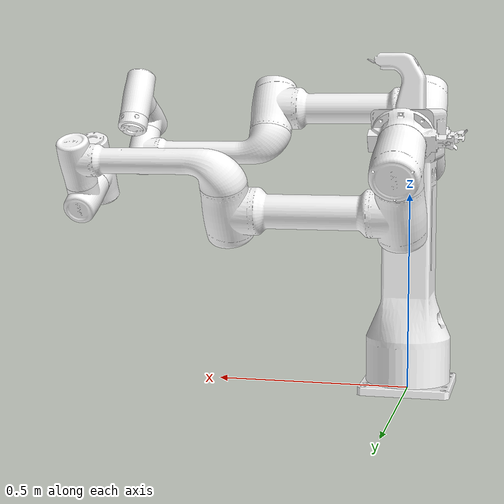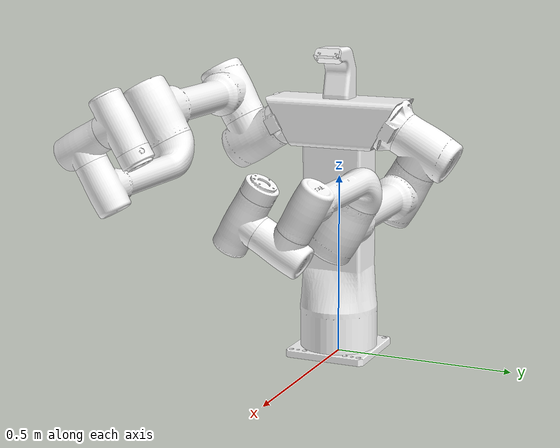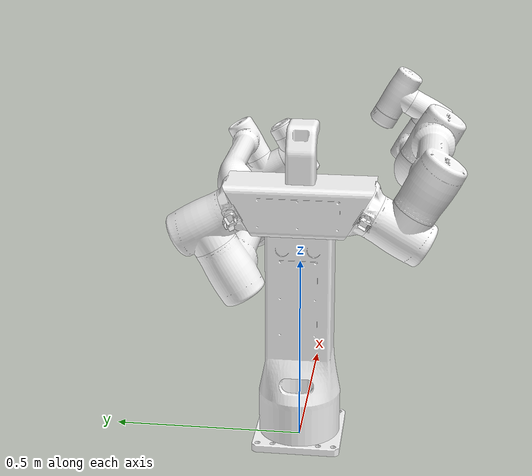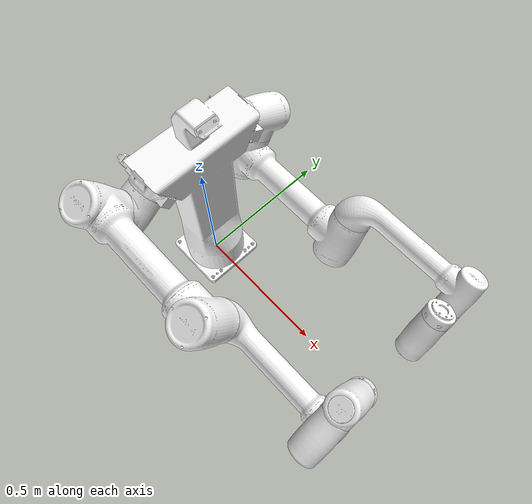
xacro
<?xml version="1.0" encoding="utf-8"?>

<robot name="dual_jaka_zu5" xmlns:xacro="http://wiki.ros.org/xacro">

  <xacro:include filename="$(find jaka_description)/urdf/jaka_zu5/dual_arm_body.xacro" />
  <xacro:include filename="$(find jaka_description)/urdf/jaka_zu5/l_arm_body.xacro" />
  <xacro:include filename="$(find jaka_description)/urdf/jaka_zu5/r_arm_body.xacro" />

  <!-- Macro for inertia matrix -->
  <xacro:macro name="sphere_inertial_matrix" params="m r">
    <inertial>
      <mass value="${m}" />
        <inertia ixx="${2*m*r*r/5}" ixy="0" ixz="0" iyy="${2*m*r*r/5}" iyz="0"  izz="${2*m*r*r/5}" />
    </inertial>
  </xacro:macro>

  <xacro:macro name="cylinder_inertial_matrix" params="m r h">
    <inertial>
      <mass value="${m}" />
        <inertia ixx="${m*(3*r*r+h*h)/12}" ixy = "0" ixz = "0" iyy="${m*(3*r*r+h*h)/12}" iyz = "0" izz="${m*r*r/2}" />
    </inertial>
  </xacro:macro>

  <xacro:macro name="box_inertial_matrix" params="m w h d">
    <inertial>
      <mass value="${m}" />
        <inertia ixx="${m*(h*h+d*d)/12}" ixy = "0" ixz = "0" iyy="${m*(w*w+d*d)/12}" iyz = "0" izz="${m*(w*w+h*h)/12}" />
    </inertial>
  </xacro:macro>

  <!-- DUAL ZU5 -->
  <link name="world" />

  <joint name="world_joint" type="fixed">
      <parent link="world" />
      <child link = "base_footprint" />
      <origin xyz="0 0 0" rpy="0 0 0" />
  </joint>

  <link name="base_footprint" >
    </link >

  <xacro:dual_arm_body body_prefix = "arm_body">
    <origin xyz="0 0 0" rpy="0 0 0" />
  </xacro:dual_arm_body>

  <xacro:l_arm_body parent_prefix = "arm_body_link">
    <origin xyz="0 0.149 0.65" rpy="-1.047 3.1415926 0" />
  </xacro:l_arm_body>

  <xacro:r_arm_body parent_prefix = "arm_body_link">
    <origin xyz="0 -0.149 0.65" rpy="1.047 3.1415926 0" />
  </xacro:r_arm_body>

</robot>

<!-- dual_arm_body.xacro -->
<robot xmlns:xacro="http://ros.org/wiki/xacro" name="dual_arm_body">
  <xacro:macro name="dual_arm_body" params="body_prefix *joint_pose">
    <link name="${body_prefix}_link">
        <inertial>
          <origin
            xyz="0.0023805 -8.69209997657022E-09 0.38265"
            rpy="0 0 0" />
          <mass
            value="26.908" />
          <inertia
            ixx="1.9969"
            ixy="5.78330000000082E-06"
            ixz="-0.013305"
            iyy="1.9121"
            iyz="-9.59990001016968E-08"
            izz="0.25121" />
        </inertial>
        <visual>
          <origin
            xyz="0 0 0"
            rpy="1.5707963267949 0 0" />
          <geometry>
            <mesh
              filename="package://jaka_description/meshes/dual_arm_body.STL" />
          </geometry>
          <material
            name="">
            <color rgba="1 1 1 1" />
          </material>
        </visual>
        <collision>
          <origin xyz="0 0 0" rpy="1.5707963267949 0 0" />
          <geometry>
            <mesh
              filename="package://jaka_description/meshes/dual_arm_body.STL" />
          </geometry>
        </collision>
    </link>

    <joint name="${body_prefix}_joint" type="fixed">
      <xacro:insert_block name="joint_pose"/>
      <parent link="base_footprint" />
      <child link = "${body_prefix}_link" />
    </joint>

    <gazebo reference="${body_prefix}_link">
      <material>Gazebo/Green</material>
      <turnGravityOff>false</turnGravityOff>
    </gazebo>

  </xacro:macro>
</robot>

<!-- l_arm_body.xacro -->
<robot xmlns:xacro="http://ros.org/wiki/xacro" name="l_arm_body">
  <xacro:macro name="l_arm_body" params="parent_prefix *joint_pose">

  <xacro:arg name="default_velocity" default="1" />

  <link name="l_arm_base_link">
    <inertial>
      <origin
        xyz="0.00096495 6.33210000011972E-08 0.019553"
        rpy="0 0 0" />
      <mass
        value="0.5146" />
      <inertia
        ixx="0.00062137"
        ixy="-1.25310000000002E-08"
        ixz="3.2162E-06"
        iyy="0.00086635"
        iyz="1.01950000029785E-10"
        izz="0.0013528" />
    </inertial>
    <visual>
      <origin
        xyz="0 0 0"
        rpy="1.5707963267949 0 0" />
      <geometry>
        <mesh
          filename="package://jaka_description/meshes/jaka_zu5_meshes/link_0.STL" />
      </geometry>
      <material
        name="">
        <color
          rgba="1 1 1 1" />
      </material>
    </visual>
    <collision>
      <origin
        xyz="0 0 0"
        rpy="1.5707963267949 0 0" />
      <geometry>
        <mesh
          filename="package://jaka_description/meshes/jaka_zu5_meshes/link_0.STL" />
      </geometry>
    </collision>
  </link>

  <joint name="l_arm_base_joint" type="fixed">
    <xacro:insert_block name="joint_pose"/>
    <parent link="${parent_prefix}" />
    <child link="l_arm_base_link" />
    <axis xyz="0 0 0" />
  </joint>

  <link name="l_shoulder_pan_link">
    <inertial>
      <origin
        xyz="5.1683E-07 -0.0033223 -0.001511"
        rpy="0 0 0" />
      <mass
        value="1.9282" />
      <inertia
        ixx="0.0056433"
        ixy="5.7032E-08"
        ixz="-6.2225E-08"
        iyy="0.0054898"
        iyz="2.0134999999999E-06"
        izz="0.0038887" />
    </inertial>
    <visual>
      <origin
        xyz="0 0 0"
        rpy="1.5707963267949 0 0" />
      <geometry>
        <mesh
          filename="package://jaka_description/meshes/jaka_zu5_meshes/link_1.STL" />
      </geometry>
      <material
        name="">
        <color
          rgba="1 1 1 1" />
      </material>
    </visual>
    <collision>
      <origin
        xyz="0 0 0"
        rpy="1.5707963267949 0 0" />
      <geometry>
        <mesh
          filename="package://jaka_description/meshes/jaka_zu5_meshes/link_1.STL" />
      </geometry>
    </collision>
  </link>

  <joint name="l_shoulder_pan_joint" type="continuous">
    <origin xyz="0 0 0.12015" rpy="0 0 0" />
    <parent link="l_arm_base_link" />
    <child link="l_shoulder_pan_link" />
    <axis xyz="0 0 1" />
    <limit lower="-3" upper="3" effort="49" velocity="$(arg default_velocity)" />
  </joint>

  <link name="l_shoulder_lift_link">
    <inertial>
      <origin
        xyz="-0.215 -2.05689999912349E-08 0.14315"
        rpy="0 0 0" />
      <mass
        value="5.8409" />
      <inertia
        ixx="0.013221"
        ixy="4.5164E-07"
        ixz="-4.5411E-08"
        iyy="0.20339"
        iyz="-3.02220000002149E-08"
        izz="0.19988" />
    </inertial>
    <visual>
      <origin
        xyz="0 0 0"
        rpy="1.5707963267949 0 0" />
      <geometry>
        <mesh
          filename="package://jaka_description/meshes/jaka_zu5_meshes/link_2.STL" />
      </geometry>
      <material
        name="">
        <color
          rgba="1 1 1 1" />
      </material>
    </visual>
    <collision>
      <origin
        xyz="0 0 0"
        rpy="1.5707963267949 0 0" />
      <geometry>
        <mesh
          filename="package://jaka_description/meshes/jaka_zu5_meshes/link_2.STL" />
      </geometry>
    </collision>
  </link>

  <joint name="l_shoulder_lift_joint" type="continuous">
    <origin xyz="0 0 0" rpy="1.57079 0 0" />
    <parent link="l_shoulder_pan_link" />
    <child link="l_shoulder_lift_link" />
    <axis xyz="0 0 -1" />
    <limit lower="-3" upper="3" effort="49" velocity="$(arg default_velocity)" />
  </joint>

  <link name="l_elbow_link">
    <inertial>
      <origin
        xyz="-0.19088 -3.84559999999352E-07 0.010588"
        rpy="0 0 0" />
      <mass
        value="2.3018" />
      <inertia
        ixx="0.0028116"
        ixy="2.56400000000176E-07"
        ixz="-0.0028806"
        iyy="0.053035"
        iyz="-6.48900000004372E-09"
        izz="0.052321" />
    </inertial>
    <visual>
      <origin
        xyz="0 0 0"
        rpy="1.5707963267949 0 0" />
      <geometry>
        <mesh
          filename="package://jaka_description/meshes/jaka_zu5_meshes/link_3.STL" />
      </geometry>
      <material
        name="">
        <color
          rgba="1 1 1 1" />
      </material>
    </visual>
    <collision>
      <origin
        xyz="0 0 0"
        rpy="1.5707963267949 0 0" />
      <geometry>
        <mesh
          filename="package://jaka_description/meshes/jaka_zu5_meshes/link_3.STL" />
      </geometry>
    </collision>
  </link>

  <joint name="l_elbow_joint" type="continuous">
    <origin xyz="-0.430 0 0" rpy="0 0 0" />
    <parent link="l_shoulder_lift_link" />
    <child link="l_elbow_link" />
    <axis xyz="0 0 -1" />
    <limit lower="-3" upper="3" effort="49" velocity="$(arg default_velocity)" />
  </joint>

  <link name="l_wrist_1_link">
    <inertial>
      <origin
        xyz="4.1023E-07 -0.0057996 -0.0026718"
        rpy="0 0 0" />
      <mass
        value="0.70739" />
      <inertia
        ixx="0.0011791"
        ixy="5.5084E-09"
        ixz="1.4807E-09"
        iyy="0.00066568"
        iyz="-1.0639E-05"
        izz="0.0011425" />
    </inertial>
    <visual>
      <origin
        xyz="0 0 0"
        rpy="1.5707963267949 0 0" />
      <geometry>
        <mesh
          filename="package://jaka_description/meshes/jaka_zu5_meshes/link_4.STL" />
      </geometry>
      <material
        name="">
        <color
          rgba="1 1 1 1" />
      </material>
    </visual>
    <collision>
      <origin
        xyz="0 0 0"
        rpy="1.5707963267949 0 0" />
      <geometry>
        <mesh
          filename="package://jaka_description/meshes/jaka_zu5_meshes/link_4.STL" />
      </geometry>
    </collision>
  </link>

  <joint name="l_wrist_1_joint" type="continuous">
    <origin xyz="-0.3685 0 0.114" rpy="0 0 0" />
    <parent link="l_elbow_link" />
    <child link="l_wrist_1_link" />
    <axis xyz="0 0 -1" />
    <limit lower="-3" upper="3" effort="11" velocity="$(arg default_velocity)" />
  </joint>

  <link name="l_wrist_2_link">
    <inertial>
      <origin
        xyz="-3.0743E-08 -0.0028896 -0.0023422"
        rpy="0 0 0" />
      <mass
        value="0.80693" />
      <inertia
        ixx="0.001655"
        ixy="1.0299E-08"
        ixz="-1.2235E-08"
        iyy="0.0007447"
        iyz="-5.79109999999995E-06"
        izz="0.0016178" />
    </inertial>
    <visual>
      <origin
        xyz="0 0 0"
        rpy="1.5707963267949 0 0" />
      <geometry>
        <mesh
          filename="package://jaka_description/meshes/jaka_zu5_meshes/link_5.STL" />
      </geometry>
      <material
        name="">
        <color
          rgba="1 1 1 1" />
      </material>
    </visual>
    <collision>
      <origin
        xyz="0 0 0"
        rpy="1.5707963267949 0 0" />
      <geometry>
        <mesh
          filename="package://jaka_description/meshes/jaka_zu5_meshes/link_5.STL" />
      </geometry>
    </collision>
  </link>

  <joint name="l_wrist_2_joint" type="continuous">
    <origin xyz="0 -0.1135 0" rpy="1.57079 3.1415926 0" />
    <parent link="l_wrist_1_link" />
    <child link="l_wrist_2_link" />
    <axis xyz="0 0 1" />
    <limit lower="-3" upper="3" effort="11" velocity="$(arg default_velocity)" />
  </joint>

  <link name="l_wrist_3_link">
    <inertial>
      <origin
        xyz="-2.7624E-05 1.34819999999987E-05 -0.021245"
        rpy="0 0 0" />
      <mass
        value="0.1805" />
      <inertia
        ixx="9.1533E-05"
        ixy="-8.8776E-08"
        ixz="8.1265E-08"
        iyy="9.2197E-05"
        iyz="1.05880000000003E-07"
        izz="0.00014442" />
    </inertial>
    <visual>
      <origin
        xyz="0 0 0"
        rpy="1.5707963267949 0 0" />
      <geometry>
        <mesh
          filename="package://jaka_description/meshes/jaka_zu5_meshes/link_6.STL" />
      </geometry>
      <material
        name="">
        <color
          rgba="1 1 1 1" />
      </material>
    </visual>
    <collision>
      <origin
        xyz="0 0 0"
        rpy="1.5707963267949 0 0" />
      <geometry>
        <mesh
          filename="package://jaka_description/meshes/jaka_zu5_meshes/link_6.STL" />
      </geometry>
    </collision>
  </link>

  <joint name="l_wrist_3_joint" type="continuous">
    <origin xyz="0 0.107 0" rpy="-1.57079 0 0" />
    <parent link="l_wrist_2_link" />
    <child link="l_wrist_3_link" />
    <axis xyz="0 0 1" />
    <limit lower="-3" upper="3" effort="11" velocity="$(arg default_velocity)" />
  </joint>

  <!-- Transmissions for ROS Control -->
  <xacro:macro name="transmission_block" params="joint_name">
    <transmission name="${joint_name}_trans">
      <type>transmission_interface/SimpleTransmission</type>
      <joint name="${joint_name}">
        <hardwareInterface>hardware_interface/PositionJointInterface</hardwareInterface>
      </joint>
      <actuator name="${joint_name}_motor">
        <hardwareInterface>hardware_interface/PositionJointInterface</hardwareInterface>
        <mechanicalReduction>1</mechanicalReduction>
      </actuator>
    </transmission>
  </xacro:macro>

  <xacro:transmission_block joint_name="l_shoulder_pan_joint"/>
  <xacro:transmission_block joint_name="l_shoulder_lift_joint"/>
  <xacro:transmission_block joint_name="l_elbow_joint"/>
  <xacro:transmission_block joint_name="l_wrist_1_joint"/>
  <xacro:transmission_block joint_name="l_wrist_2_joint"/>
  <xacro:transmission_block joint_name="l_wrist_3_joint"/>

	<!-- ros_control plugin -->
  <gazebo>
    <plugin name="gazebo_ros_control" filename="libgazebo_ros_control.so">
      <robotNamespace>/l_zu5</robotNamespace>
      <robotSimType>gazebo_ros_control/DefaultRobotHWSim</robotSimType>
      <legacyModeNS>true</legacyModeNS>
    </plugin>
  </gazebo>

  </xacro:macro>
</robot>

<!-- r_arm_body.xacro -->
<robot xmlns:xacro="http://ros.org/wiki/xacro" name="r_arm_body">
  <xacro:macro name="r_arm_body" params="parent_prefix *joint_pose">

  <xacro:arg name="default_velocity" default="1" />

  <link name="r_arm_base_link">
    <inertial>
      <origin
        xyz="0.00096495 6.33210000011972E-08 0.019553"
        rpy="0 0 0" />
      <mass
        value="0.5146" />
      <inertia
        ixx="0.00062137"
        ixy="-1.25310000000002E-08"
        ixz="3.2162E-06"
        iyy="0.00086635"
        iyz="1.01950000029785E-10"
        izz="0.0013528" />
    </inertial>
    <visual>
      <origin
        xyz="0 0 0"
        rpy="1.5707963267949 0 0" />
      <geometry>
        <mesh
          filename="package://jaka_description/meshes/jaka_zu5_meshes/link_0.STL" />
      </geometry>
      <material
        name="">
        <color
          rgba="1 1 1 1" />
      </material>
    </visual>
    <collision>
      <origin
        xyz="0 0 0"
        rpy="1.5707963267949 0 0" />
      <geometry>
        <mesh
          filename="package://jaka_description/meshes/jaka_zu5_meshes/link_0.STL" />
      </geometry>
    </collision>
  </link>

  <joint name="r_arm_base_joint" type="fixed">
    <xacro:insert_block name="joint_pose"/>
    <parent link="${parent_prefix}" />
    <child link="r_arm_base_link" />
    <axis xyz="0 0 0" />
  </joint>

  <link name="r_shoulder_pan_link">
    <inertial>
      <origin
        xyz="5.1683E-07 -0.0033223 -0.001511"
        rpy="0 0 0" />
      <mass
        value="1.9282" />
      <inertia
        ixx="0.0056433"
        ixy="5.7032E-08"
        ixz="-6.2225E-08"
        iyy="0.0054898"
        iyz="2.0134999999999E-06"
        izz="0.0038887" />
    </inertial>
    <visual>
      <origin
        xyz="0 0 0"
        rpy="1.5707963267949 0 0" />
      <geometry>
        <mesh
          filename="package://jaka_description/meshes/jaka_zu5_meshes/link_1.STL" />
      </geometry>
      <material
        name="">
        <color
          rgba="1 1 1 1" />
      </material>
    </visual>
    <collision>
      <origin
        xyz="0 0 0"
        rpy="1.5707963267949 0 0" />
      <geometry>
        <mesh
          filename="package://jaka_description/meshes/jaka_zu5_meshes/link_1.STL" />
      </geometry>
    </collision>
  </link>

  <joint name="r_shoulder_pan_joint" type="continuous">
    <origin xyz="0 0 0.12015" rpy="0 0 0" />
    <parent link="r_arm_base_link" />
    <child link="r_shoulder_pan_link" />
    <axis xyz="0 0 1" />
    <limit lower="-3" upper="3" effort="49" velocity="$(arg default_velocity)" />
  </joint>

  <link name="r_shoulder_lift_link">
    <inertial>
      <origin
        xyz="-0.215 -2.05689999912349E-08 0.14315"
        rpy="0 0 0" />
      <mass
        value="5.8409" />
      <inertia
        ixx="0.013221"
        ixy="4.5164E-07"
        ixz="-4.5411E-08"
        iyy="0.20339"
        iyz="-3.02220000002149E-08"
        izz="0.19988" />
    </inertial>
    <visual>
      <origin
        xyz="0 0 0"
        rpy="1.5707963267949 0 0" />
      <geometry>
        <mesh
          filename="package://jaka_description/meshes/jaka_zu5_meshes/link_2.STL" />
      </geometry>
      <material
        name="">
        <color
          rgba="1 1 1 1" />
      </material>
    </visual>
    <collision>
      <origin
        xyz="0 0 0"
        rpy="1.5707963267949 0 0" />
      <geometry>
        <mesh
          filename="package://jaka_description/meshes/jaka_zu5_meshes/link_2.STL" />
      </geometry>
    </collision>
  </link>

  <joint name="r_shoulder_lift_joint" type="continuous">
    <origin xyz="0 0 0" rpy="1.57079 0 0" />
    <parent link="r_shoulder_pan_link" />
    <child link="r_shoulder_lift_link" />
    <axis xyz="0 0 -1" />
    <limit lower="-3" upper="3" effort="49" velocity="$(arg default_velocity)" />
  </joint>

  <link name="r_elbow_link">
    <inertial>
      <origin
        xyz="-0.19088 -3.84559999999352E-07 0.010588"
        rpy="0 0 0" />
      <mass
        value="2.3018" />
      <inertia
        ixx="0.0028116"
        ixy="2.56400000000176E-07"
        ixz="-0.0028806"
        iyy="0.053035"
        iyz="-6.48900000004372E-09"
        izz="0.052321" />
    </inertial>
    <visual>
      <origin
        xyz="0 0 0"
        rpy="1.5707963267949 0 0" />
      <geometry>
        <mesh
          filename="package://jaka_description/meshes/jaka_zu5_meshes/link_3.STL" />
      </geometry>
      <material
        name="">
        <color
          rgba="1 1 1 1" />
      </material>
    </visual>
    <collision>
      <origin
        xyz="0 0 0"
        rpy="1.5707963267949 0 0" />
      <geometry>
        <mesh
          filename="package://jaka_description/meshes/jaka_zu5_meshes/link_3.STL" />
      </geometry>
    </collision>
  </link>

  <joint name="r_elbow_joint" type="continuous">
    <origin xyz="-0.430 0 0" rpy="0 0 0" />
    <parent link="r_shoulder_lift_link" />
    <child link="r_elbow_link" />
    <axis xyz="0 0 -1" />
    <limit lower="-3" upper="3" effort="49" velocity="$(arg default_velocity)" />
  </joint>

  <link name="r_wrist_1_link">
    <inertial>
      <origin
        xyz="4.1023E-07 -0.0057996 -0.0026718"
        rpy="0 0 0" />
      <mass
        value="0.70739" />
      <inertia
        ixx="0.0011791"
        ixy="5.5084E-09"
        ixz="1.4807E-09"
        iyy="0.00066568"
        iyz="-1.0639E-05"
        izz="0.0011425" />
    </inertial>
    <visual>
      <origin
        xyz="0 0 0"
        rpy="1.5707963267949 0 0" />
      <geometry>
        <mesh
          filename="package://jaka_description/meshes/jaka_zu5_meshes/link_4.STL" />
      </geometry>
      <material
        name="">
        <color
          rgba="1 1 1 1" />
      </material>
    </visual>
    <collision>
      <origin
        xyz="0 0 0"
        rpy="1.5707963267949 0 0" />
      <geometry>
        <mesh
          filename="package://jaka_description/meshes/jaka_zu5_meshes/link_4.STL" />
      </geometry>
    </collision>
  </link>

  <joint name="r_wrist_1_joint" type="continuous">
    <origin xyz="-0.3685 0 0.114" rpy="0 0 0" />
    <parent link="r_elbow_link" />
    <child link="r_wrist_1_link" />
    <axis xyz="0 0 -1" />
    <limit lower="-3" upper="3" effort="11" velocity="$(arg default_velocity)" />
  </joint>

  <link name="r_wrist_2_link">
    <inertial>
      <origin
        xyz="-3.0743E-08 -0.0028896 -0.0023422"
        rpy="0 0 0" />
      <mass
        value="0.80693" />
      <inertia
        ixx="0.001655"
        ixy="1.0299E-08"
        ixz="-1.2235E-08"
        iyy="0.0007447"
        iyz="-5.79109999999995E-06"
        izz="0.0016178" />
    </inertial>
    <visual>
      <origin
        xyz="0 0 0"
        rpy="1.5707963267949 0 0" />
      <geometry>
        <mesh
          filename="package://jaka_description/meshes/jaka_zu5_meshes/link_5.STL" />
      </geometry>
      <material
        name="">
        <color
          rgba="1 1 1 1" />
      </material>
    </visual>
    <collision>
      <origin
        xyz="0 0 0"
        rpy="1.5707963267949 0 0" />
      <geometry>
        <mesh
          filename="package://jaka_description/meshes/jaka_zu5_meshes/link_5.STL" />
      </geometry>
    </collision>
  </link>

  <joint name="r_wrist_2_joint" type="continuous">
    <origin xyz="0 -0.1135 0" rpy="1.57079 3.1415926 0" />
    <parent link="r_wrist_1_link" />
    <child link="r_wrist_2_link" />
    <axis xyz="0 0 1" />
    <limit lower="-3" upper="3" effort="11" velocity="$(arg default_velocity)" />
  </joint>

  <link name="r_wrist_3_link">
    <inertial>
      <origin
        xyz="-2.7624E-05 1.34819999999987E-05 -0.021245"
        rpy="0 0 0" />
      <mass
        value="0.1805" />
      <inertia
        ixx="9.1533E-05"
        ixy="-8.8776E-08"
        ixz="8.1265E-08"
        iyy="9.2197E-05"
        iyz="1.05880000000003E-07"
        izz="0.00014442" />
    </inertial>
    <visual>
      <origin
        xyz="0 0 0"
        rpy="1.5707963267949 0 0" />
      <geometry>
        <mesh
          filename="package://jaka_description/meshes/jaka_zu5_meshes/link_6.STL" />
      </geometry>
      <material
        name="">
        <color
          rgba="1 1 1 1" />
      </material>
    </visual>
    <collision>
      <origin
        xyz="0 0 0"
        rpy="1.5707963267949 0 0" />
      <geometry>
        <mesh
          filename="package://jaka_description/meshes/jaka_zu5_meshes/link_6.STL" />
      </geometry>
    </collision>
  </link>

  <joint name="r_wrist_3_joint" type="continuous">
    <origin xyz="0 0.107 0" rpy="-1.57079 0 0" />
    <parent link="r_wrist_2_link" />
    <child link="r_wrist_3_link" />
    <axis xyz="0 0 1" />
    <limit lower="-3" upper="3" effort="11" velocity="$(arg default_velocity)" />
  </joint>

  <!-- Transmissions for ROS Control -->
  <xacro:macro name="transmission_block" params="joint_name">
    <transmission name="${joint_name}_trans">
      <type>transmission_interface/SimpleTransmission</type>
      <joint name="${joint_name}">
        <hardwareInterface>hardware_interface/PositionJointInterface</hardwareInterface>
      </joint>
      <actuator name="${joint_name}_motor">
        <hardwareInterface>hardware_interface/PositionJointInterface</hardwareInterface>
        <mechanicalReduction>1</mechanicalReduction>
      </actuator>
    </transmission>
  </xacro:macro>

  <xacro:transmission_block joint_name="r_shoulder_pan_joint"/>
  <xacro:transmission_block joint_name="r_shoulder_lift_joint"/>
  <xacro:transmission_block joint_name="r_elbow_joint"/>
  <xacro:transmission_block joint_name="r_wrist_1_joint"/>
  <xacro:transmission_block joint_name="r_wrist_2_joint"/>
  <xacro:transmission_block joint_name="r_wrist_3_joint"/>

	<!-- ros_control plugin -->
  <gazebo>
    <plugin name="gazebo_ros_control" filename="libgazebo_ros_control.so">
      <robotNamespace>/r_zu5</robotNamespace>
      <robotSimType>gazebo_ros_control/DefaultRobotHWSim</robotSimType>
      <legacyModeNS>true</legacyModeNS>
    </plugin>
  </gazebo>

  </xacro:macro>
</robot>
